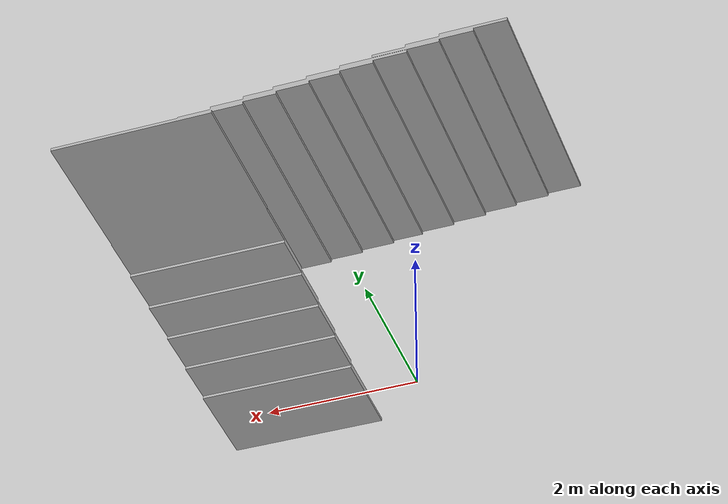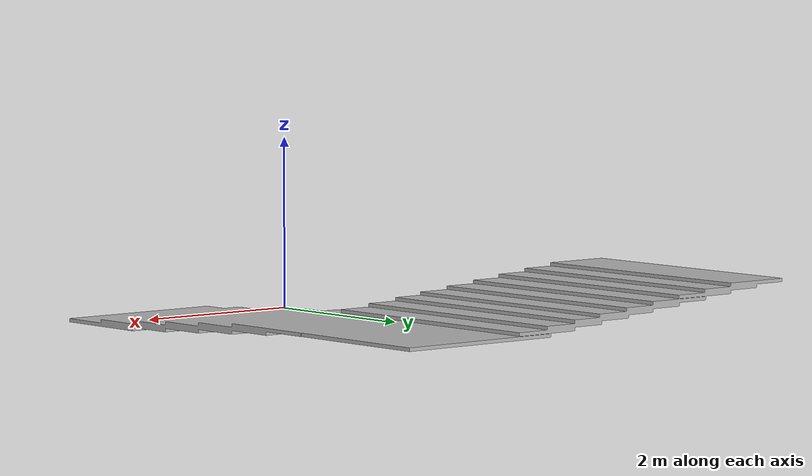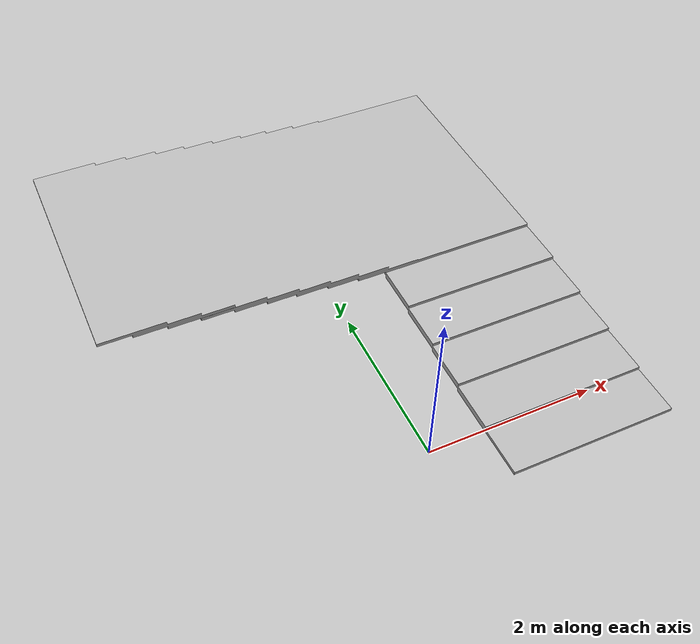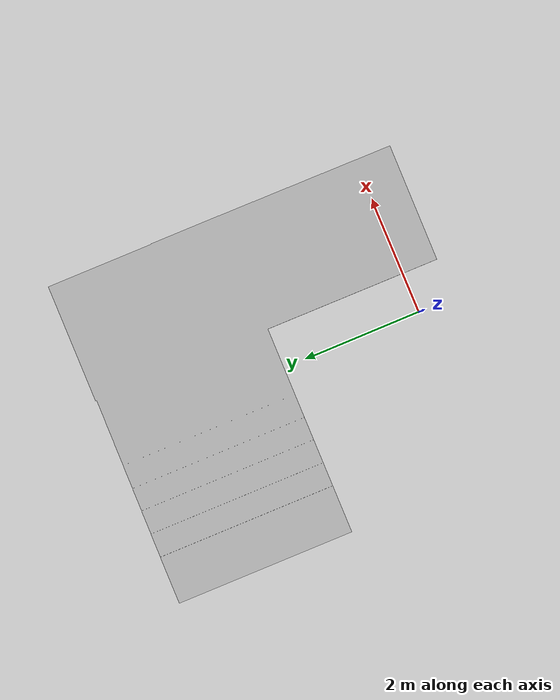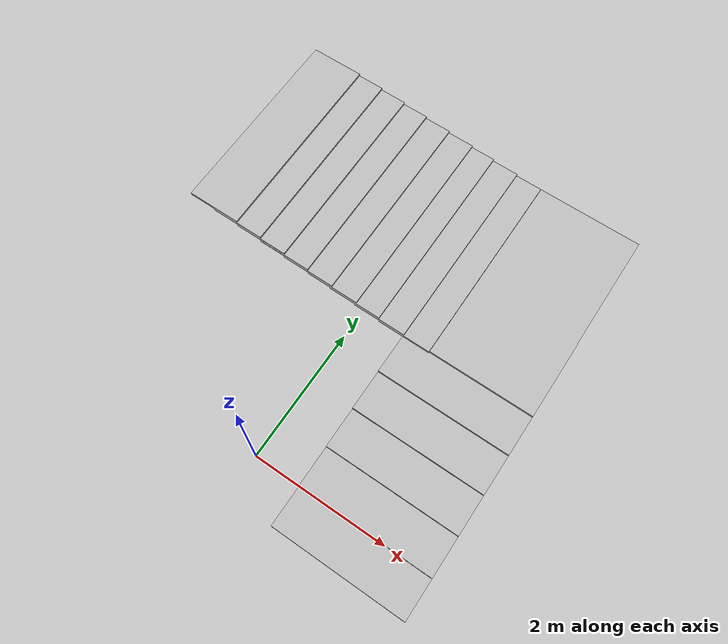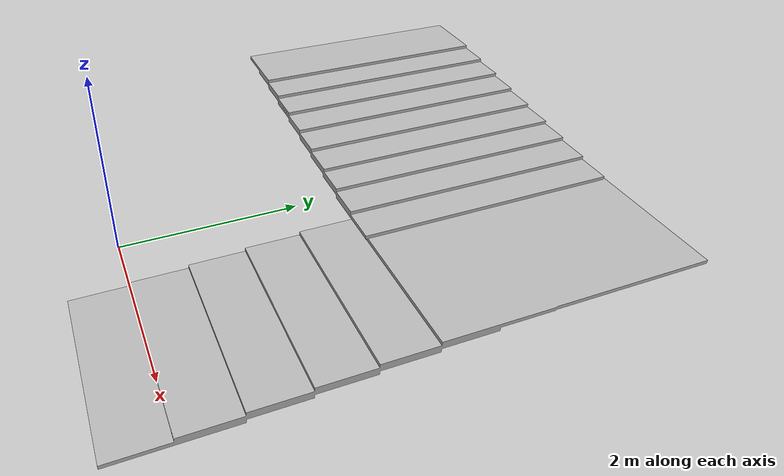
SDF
<?xml version="1.0" ?>
<sdf version="1.5">
  <model name="stairs_v3">
 <static>true</static>

  <pose>0 0 0 0 0 0 </pose>
    <link name="link">
      <collision name="collision">

          <geometry>
          <mesh>
            <scale>1 1.5 0.2</scale>
            <uri>model://stairs_v3/meshes/stairs_v3.dae</uri>
          </mesh>
        </geometry>

        <surface>
          <friction>
            <ode>
              <mu>100</mu>
              <mu2>50</mu2>
            </ode>
          </friction>
        </surface>
      </collision>

      <visual name="visual">
	  <cast_shadows>true</cast_shadows>

        <geometry>
          <mesh>
            <scale>1 1.5 0.2</scale>
            <uri>model://stairs_v3/meshes/stairs_v3.dae</uri>
          </mesh>
        </geometry>

      </visual>
    </link>
  </model>
</sdf>
